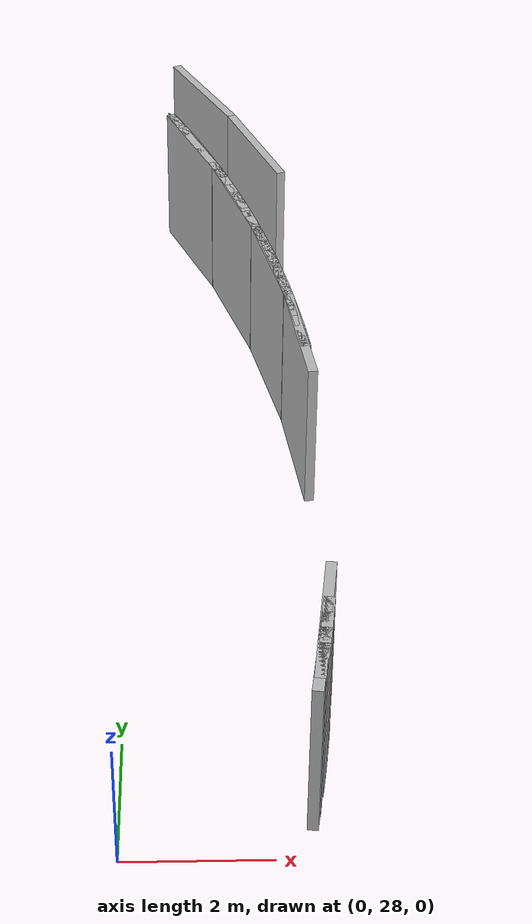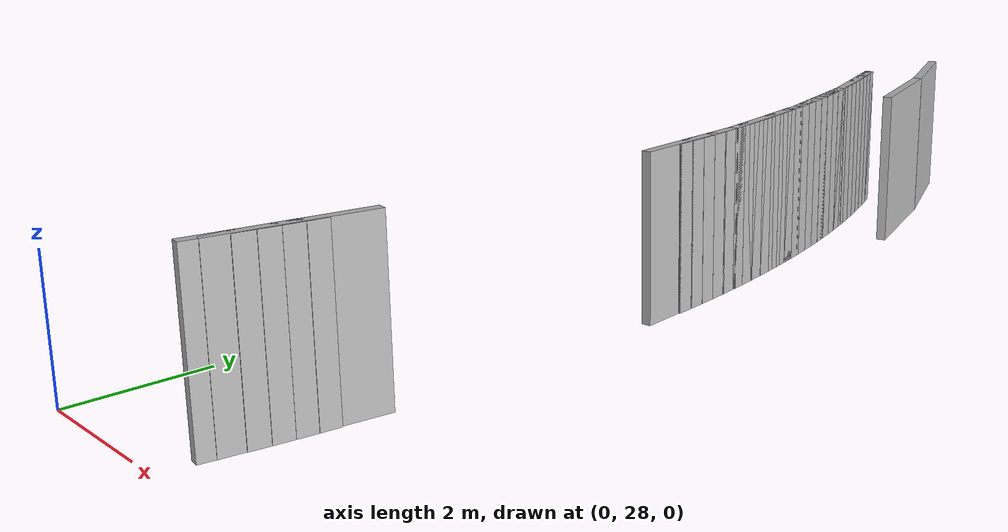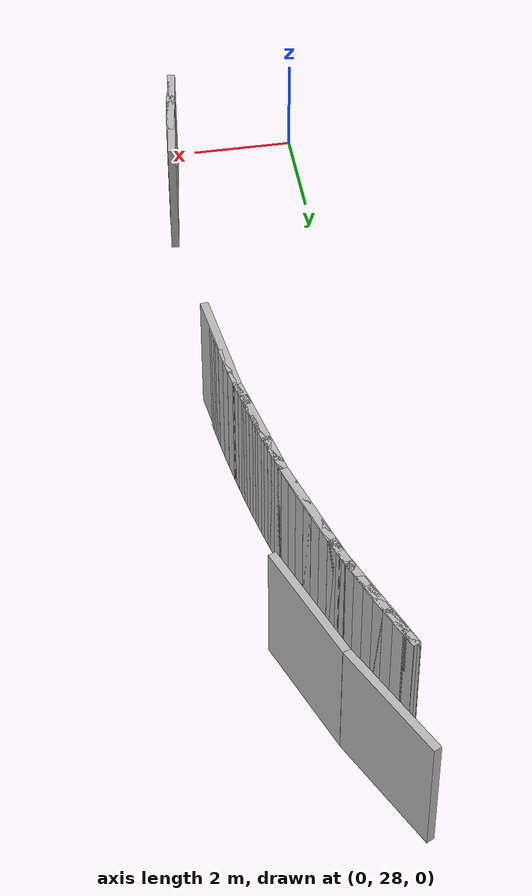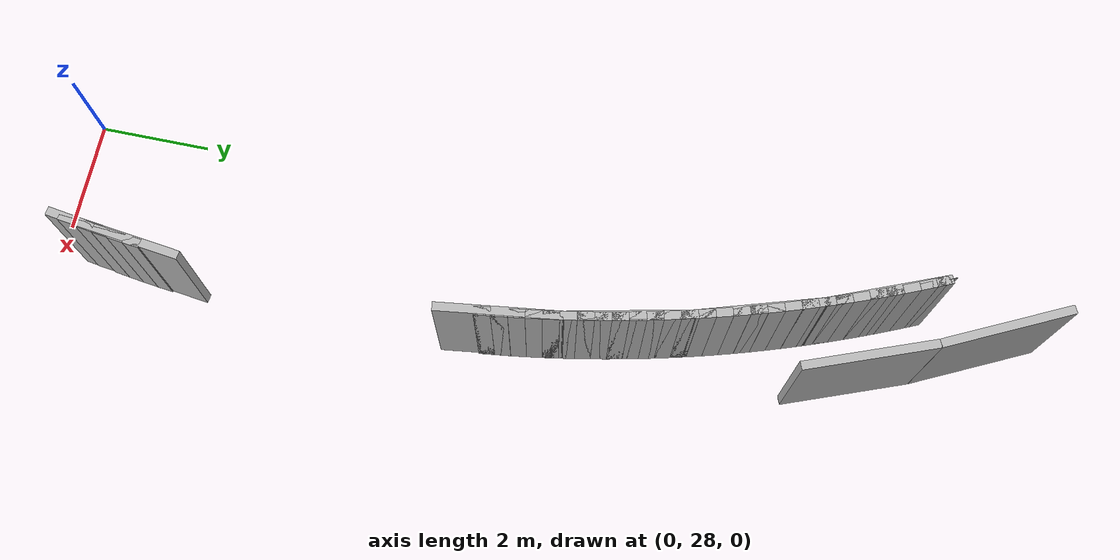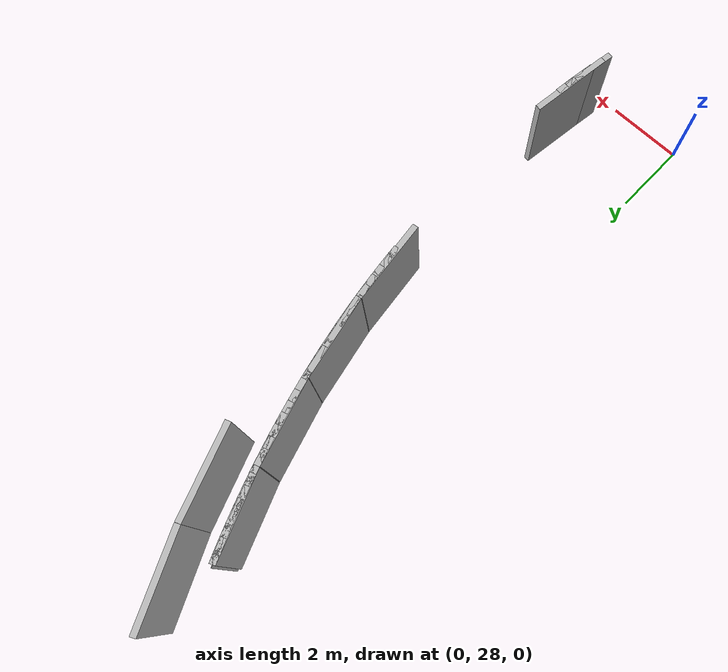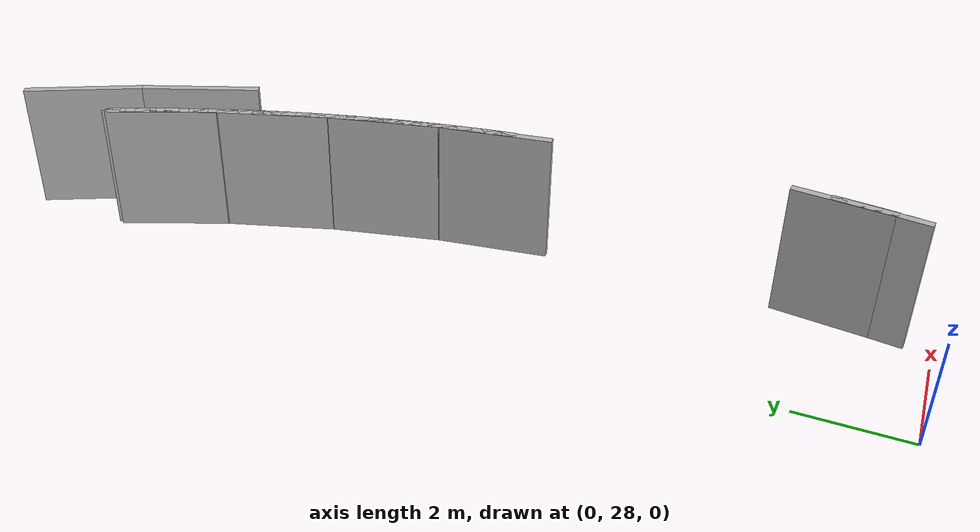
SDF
<sdf version="1.6">
 <model name="sps_2404">
  <static>1</static>
  <allow_auto_disable>0</allow_auto_disable>
  <link name="Wall7730">
   <collision name="collision"><geometry><box><size>0.282374 0.15 2.5</size></box></geometry></collision>
   <visual name="visual">
    <geometry><box><size>0.282374 0.15 2.5</size></box></geometry>
    <transparency>0.0</transparency>
   </visual>
   <pose>1.31515 41.6692 1.25 0 0 -1.21397</pose>
  </link>
  <link name="Wall7731">
   <collision name="collision"><geometry><box><size>0.282471 0.15 2.5</size></box></geometry></collision>
   <visual name="visual">
    <geometry><box><size>0.282471 0.15 2.5</size></box></geometry>
    <transparency>0.0</transparency>
   </visual>
   <pose>1.41225 41.404 1.25 0 0 -1.22561</pose>
  </link>
  <link name="Wall7732">
   <collision name="collision"><geometry><box><size>0.282222 0.15 2.5</size></box></geometry></collision>
   <visual name="visual">
    <geometry><box><size>0.282222 0.15 2.5</size></box></geometry>
    <transparency>0.0</transparency>
   </visual>
   <pose>1.50634 41.1378 1.25 0 0 -1.23653</pose>
  </link>
  <link name="Wall7733">
   <collision name="collision"><geometry><box><size>0.282297 0.15 2.5</size></box></geometry></collision>
   <visual name="visual">
    <geometry><box><size>0.282297 0.15 2.5</size></box></geometry>
    <transparency>0.0</transparency>
   </visual>
   <pose>1.59734 40.8706 1.25 0 0 -1.2485</pose>
  </link>
  <link name="Wall7734">
   <collision name="collision"><geometry><box><size>0.282407 0.15 2.5</size></box></geometry></collision>
   <visual name="visual">
    <geometry><box><size>0.282407 0.15 2.5</size></box></geometry>
    <transparency>0.0</transparency>
   </visual>
   <pose>1.68536 40.6023 1.25 0 0 -1.25909</pose>
  </link>
  <link name="Wall7735">
   <collision name="collision"><geometry><box><size>0.282423 0.15 2.5</size></box></geometry></collision>
   <visual name="visual">
    <geometry><box><size>0.282423 0.15 2.5</size></box></geometry>
    <transparency>0.0</transparency>
   </visual>
   <pose>1.77035 40.333 1.25 0 0 -1.27112</pose>
  </link>
  <link name="Wall7736">
   <collision name="collision"><geometry><box><size>0.282327 0.15 2.5</size></box></geometry></collision>
   <visual name="visual">
    <geometry><box><size>0.282327 0.15 2.5</size></box></geometry>
    <transparency>0.0</transparency>
   </visual>
   <pose>1.85235 40.0628 1.25 0 0 -1.28118</pose>
  </link>
  <link name="Wall7737">
   <collision name="collision"><geometry><box><size>0.282418 0.15 2.5</size></box></geometry></collision>
   <visual name="visual">
    <geometry><box><size>0.282418 0.15 2.5</size></box></geometry>
    <transparency>0.0</transparency>
   </visual>
   <pose>1.93136 39.7917 1.25 0 0 -1.29321</pose>
  </link>
  <link name="Wall7738">
   <collision name="collision"><geometry><box><size>0.28233 0.15 2.5</size></box></geometry></collision>
   <visual name="visual">
    <geometry><box><size>0.28233 0.15 2.5</size></box></geometry>
    <transparency>0.0</transparency>
   </visual>
   <pose>2.00716 39.5197 1.25 0 0 -1.30479</pose>
  </link>
  <link name="Wall7739">
   <collision name="collision"><geometry><box><size>0.282488 0.15 2.5</size></box></geometry></collision>
   <visual name="visual">
    <geometry><box><size>0.282488 0.15 2.5</size></box></geometry>
    <transparency>0.0</transparency>
   </visual>
   <pose>2.07986 39.2468 1.25 0 0 -1.31612</pose>
  </link>
  <link name="Wall7740">
   <collision name="collision"><geometry><box><size>0.282416 0.15 2.5</size></box></geometry></collision>
   <visual name="visual">
    <geometry><box><size>0.282416 0.15 2.5</size></box></geometry>
    <transparency>0.0</transparency>
   </visual>
   <pose>2.14956 38.9731 1.25 0 0 -1.32676</pose>
  </link>
  <link name="Wall7741">
   <collision name="collision"><geometry><box><size>0.282364 0.15 2.5</size></box></geometry></collision>
   <visual name="visual">
    <geometry><box><size>0.282364 0.15 2.5</size></box></geometry>
    <transparency>0.0</transparency>
   </visual>
   <pose>2.21618 38.6987 1.25 0 0 -1.33851</pose>
  </link>
  <link name="Wall7742">
   <collision name="collision"><geometry><box><size>0.282451 0.15 2.5</size></box></geometry></collision>
   <visual name="visual">
    <geometry><box><size>0.282451 0.15 2.5</size></box></geometry>
    <transparency>0.0</transparency>
   </visual>
   <pose>2.27965 38.4235 1.25 0 0 -1.34967</pose>
  </link>
  <link name="Wall7743">
   <collision name="collision"><geometry><box><size>0.282442 0.15 2.5</size></box></geometry></collision>
   <visual name="visual">
    <geometry><box><size>0.282442 0.15 2.5</size></box></geometry>
    <transparency>0.0</transparency>
   </visual>
   <pose>2.34005 38.1476 1.25 0 0 -1.36094</pose>
  </link>
  <link name="Wall7744">
   <collision name="collision"><geometry><box><size>0.28236 0.15 2.5</size></box></geometry></collision>
   <visual name="visual">
    <geometry><box><size>0.28236 0.15 2.5</size></box></geometry>
    <transparency>0.0</transparency>
   </visual>
   <pose>2.39736 37.8711 1.25 0 0 -1.37192</pose>
  </link>
  <link name="Wall7745">
   <collision name="collision"><geometry><box><size>0.282316 0.15 2.5</size></box></geometry></collision>
   <visual name="visual">
    <geometry><box><size>0.282316 0.15 2.5</size></box></geometry>
    <transparency>0.0</transparency>
   </visual>
   <pose>2.45147 37.594 1.25 0 0 -1.384</pose>
  </link>
  <link name="Wall7746">
   <collision name="collision"><geometry><box><size>0.282306 0.15 2.5</size></box></geometry></collision>
   <visual name="visual">
    <geometry><box><size>0.282306 0.15 2.5</size></box></geometry>
    <transparency>0.0</transparency>
   </visual>
   <pose>2.50237 37.3163 1.25 0 0 -1.39498</pose>
  </link>
  <link name="Wall7747">
   <collision name="collision"><geometry><box><size>0.28228 0.15 2.5</size></box></geometry></collision>
   <visual name="visual">
    <geometry><box><size>0.28228 0.15 2.5</size></box></geometry>
    <transparency>0.0</transparency>
   </visual>
   <pose>2.55025 37.0381 1.25 0 0 -1.40572</pose>
  </link>
  <link name="Wall7748">
   <collision name="collision"><geometry><box><size>0.282499 0.15 2.5</size></box></geometry></collision>
   <visual name="visual">
    <geometry><box><size>0.282499 0.15 2.5</size></box></geometry>
    <transparency>0.0</transparency>
   </visual>
   <pose>2.59505 36.7593 1.25 0 0 -1.41723</pose>
  </link>
  <link name="Wall7749">
   <collision name="collision"><geometry><box><size>0.282264 0.15 2.5</size></box></geometry></collision>
   <visual name="visual">
    <geometry><box><size>0.282264 0.15 2.5</size></box></geometry>
    <transparency>0.0</transparency>
   </visual>
   <pose>2.63665 36.48 1.25 0 0 -1.42869</pose>
  </link>
  <link name="Wall7750">
   <collision name="collision"><geometry><box><size>0.282619 0.15 2.5</size></box></geometry></collision>
   <visual name="visual">
    <geometry><box><size>0.282619 0.15 2.5</size></box></geometry>
    <transparency>0.0</transparency>
   </visual>
   <pose>2.67504 36.2002 1.25 0 0 -1.4402</pose>
  </link>
  <link name="Wall7751">
   <collision name="collision"><geometry><box><size>0.282163 0.15 2.5</size></box></geometry></collision>
   <visual name="visual">
    <geometry><box><size>0.282163 0.15 2.5</size></box></geometry>
    <transparency>0.0</transparency>
   </visual>
   <pose>2.71026 35.92 1.25 0 0 -1.45132</pose>
  </link>
  <link name="Wall7772">
   <collision name="collision"><geometry><box><size>0.282355 0.15 2.5</size></box></geometry></collision>
   <visual name="visual">
    <geometry><box><size>0.282355 0.15 2.5</size></box></geometry>
    <transparency>0.0</transparency>
   </visual>
   <pose>2.71523 30.0041 1.25 0 0 -1.68866</pose>
  </link>
  <link name="Wall7773">
   <collision name="collision"><geometry><box><size>0.282359 0.15 2.5</size></box></geometry></collision>
   <visual name="visual">
    <geometry><box><size>0.282359 0.15 2.5</size></box></geometry>
    <transparency>0.0</transparency>
   </visual>
   <pose>2.68053 29.7239 1.25 0 0 -1.69933</pose>
  </link>
  <link name="Wall7774">
   <collision name="collision"><geometry><box><size>0.282386 0.15 2.5</size></box></geometry></collision>
   <visual name="visual">
    <geometry><box><size>0.282386 0.15 2.5</size></box></geometry>
    <transparency>0.0</transparency>
   </visual>
   <pose>2.64266 29.4441 1.25 0 0 -1.71132</pose>
  </link>
  <link name="Wall7908">
   <collision name="collision"><geometry><box><size>0.0107645 0.15 2.5</size></box></geometry></collision>
   <visual name="visual">
    <geometry><box><size>0.0107645 0.15 2.5</size></box></geometry>
    <transparency>0.0</transparency>
   </visual>
   <pose>0.607353 43.3619 1.25 0 -0 0.420527</pose>
  </link>
  <link name="Wall7909">
   <collision name="collision"><geometry><box><size>0.282237 0.15 2.5</size></box></geometry></collision>
   <visual name="visual">
    <geometry><box><size>0.282237 0.15 2.5</size></box></geometry>
    <transparency>0.0</transparency>
   </visual>
   <pose>0.670371 43.2355 1.25 0 0 -1.14642</pose>
  </link>
  <link name="Wall7910">
   <collision name="collision"><geometry><box><size>0.282378 0.15 2.5</size></box></geometry></collision>
   <visual name="visual">
    <geometry><box><size>0.282378 0.15 2.5</size></box></geometry>
    <transparency>0.0</transparency>
   </visual>
   <pose>0.785178 42.9776 1.25 0 0 -1.15753</pose>
  </link>
  <link name="Wall7911">
   <collision name="collision"><geometry><box><size>0.282458 0.15 2.5</size></box></geometry></collision>
   <visual name="visual">
    <geometry><box><size>0.282458 0.15 2.5</size></box></geometry>
    <transparency>0.0</transparency>
   </visual>
   <pose>0.897056 42.7183 1.25 0 0 -1.16942</pose>
  </link>
  <link name="Wall7912">
   <collision name="collision"><geometry><box><size>0.282229 0.15 2.5</size></box></geometry></collision>
   <visual name="visual">
    <geometry><box><size>0.282229 0.15 2.5</size></box></geometry>
    <transparency>0.0</transparency>
   </visual>
   <pose>1.00594 42.4578 1.25 0 0 -1.18033</pose>
  </link>
  <link name="Wall7913">
   <collision name="collision"><geometry><box><size>0.282476 0.15 2.5</size></box></geometry></collision>
   <visual name="visual">
    <geometry><box><size>0.282476 0.15 2.5</size></box></geometry>
    <transparency>0.0</transparency>
   </visual>
   <pose>1.11196 42.1961 1.25 0 0 -1.19141</pose>
  </link>
  <link name="Wall9497">
   <collision name="collision"><geometry><box><size>1.69407 0.15 2.5</size></box></geometry></collision>
   <visual name="visual">
    <geometry><box><size>1.69407 0.15 2.5</size></box></geometry>
    <transparency>0.0</transparency>
   </visual>
   <pose>2.60854 29.3063 1.25 0 -0 1.42472</pose>
  </link>
  <link name="Wall16895">
   <collision name="collision"><geometry><box><size>2.31532 0.15 2.5</size></box></geometry></collision>
   <visual name="visual">
    <geometry><box><size>2.31532 0.15 2.5</size></box></geometry>
    <transparency>0.0</transparency>
   </visual>
   <pose>2.14916 42.2192 1.25 0 -0 1.93603</pose>
  </link>
  <link name="Wall16896">
   <collision name="collision"><geometry><box><size>2.31532 0.15 2.5</size></box></geometry></collision>
   <visual name="visual">
    <geometry><box><size>2.31532 0.15 2.5</size></box></geometry>
    <transparency>0.0</transparency>
   </visual>
   <pose>1.22756 44.3407 1.25 0 -0 2.02519</pose>
  </link>
  <link name="Wall32361">
   <collision name="collision"><geometry><box><size>0.282407 0.15 2.5</size></box></geometry></collision>
   <visual name="visual">
    <geometry><box><size>0.282407 0.15 2.5</size></box></geometry>
    <transparency>0.0</transparency>
   </visual>
   <pose>2.60158 29.1647 1.25 0 -0 1.41936</pose>
  </link>
  <link name="Wall32362">
   <collision name="collision"><geometry><box><size>0.28236 0.15 2.5</size></box></geometry></collision>
   <visual name="visual">
    <geometry><box><size>0.28236 0.15 2.5</size></box></geometry>
    <transparency>0.0</transparency>
   </visual>
   <pose>2.64257 29.4441 1.25 0 -0 1.43092</pose>
  </link>
  <link name="Wall32363">
   <collision name="collision"><geometry><box><size>0.282382 0.15 2.5</size></box></geometry></collision>
   <visual name="visual">
    <geometry><box><size>0.282382 0.15 2.5</size></box></geometry>
    <transparency>0.0</transparency>
   </visual>
   <pose>2.68044 29.7239 1.25 0 -0 1.44162</pose>
  </link>
  <link name="Wall32385">
   <collision name="collision"><geometry><box><size>0.282163 0.15 2.5</size></box></geometry></collision>
   <visual name="visual">
    <geometry><box><size>0.282163 0.15 2.5</size></box></geometry>
    <transparency>0.0</transparency>
   </visual>
   <pose>2.71026 35.92 1.25 0 -0 1.69027</pose>
  </link>
  <link name="Wall32386">
   <collision name="collision"><geometry><box><size>0.282619 0.15 2.5</size></box></geometry></collision>
   <visual name="visual">
    <geometry><box><size>0.282619 0.15 2.5</size></box></geometry>
    <transparency>0.0</transparency>
   </visual>
   <pose>2.67504 36.2002 1.25 0 -0 1.70139</pose>
  </link>
  <link name="Wall32387">
   <collision name="collision"><geometry><box><size>0.28229 0.15 2.5</size></box></geometry></collision>
   <visual name="visual">
    <geometry><box><size>0.28229 0.15 2.5</size></box></geometry>
    <transparency>0.0</transparency>
   </visual>
   <pose>2.63656 36.48 1.25 0 -0 1.71355</pose>
  </link>
  <link name="Wall32388">
   <collision name="collision"><geometry><box><size>0.282471 0.15 2.5</size></box></geometry></collision>
   <visual name="visual">
    <geometry><box><size>0.282471 0.15 2.5</size></box></geometry>
    <transparency>0.0</transparency>
   </visual>
   <pose>2.59496 36.7593 1.25 0 -0 1.72372</pose>
  </link>
  <link name="Wall32389">
   <collision name="collision"><geometry><box><size>0.28228 0.15 2.5</size></box></geometry></collision>
   <visual name="visual">
    <geometry><box><size>0.28228 0.15 2.5</size></box></geometry>
    <transparency>0.0</transparency>
   </visual>
   <pose>2.55025 37.0381 1.25 0 -0 1.73587</pose>
  </link>
  <link name="Wall32390">
   <collision name="collision"><geometry><box><size>0.282306 0.15 2.5</size></box></geometry></collision>
   <visual name="visual">
    <geometry><box><size>0.282306 0.15 2.5</size></box></geometry>
    <transparency>0.0</transparency>
   </visual>
   <pose>2.50237 37.3163 1.25 0 -0 1.74661</pose>
  </link>
  <link name="Wall32391">
   <collision name="collision"><geometry><box><size>0.282316 0.15 2.5</size></box></geometry></collision>
   <visual name="visual">
    <geometry><box><size>0.282316 0.15 2.5</size></box></geometry>
    <transparency>0.0</transparency>
   </visual>
   <pose>2.45147 37.594 1.25 0 -0 1.75759</pose>
  </link>
  <link name="Wall32392">
   <collision name="collision"><geometry><box><size>0.28236 0.15 2.5</size></box></geometry></collision>
   <visual name="visual">
    <geometry><box><size>0.28236 0.15 2.5</size></box></geometry>
    <transparency>0.0</transparency>
   </visual>
   <pose>2.39736 37.8711 1.25 0 -0 1.76968</pose>
  </link>
  <link name="Wall32393">
   <collision name="collision"><geometry><box><size>0.282442 0.15 2.5</size></box></geometry></collision>
   <visual name="visual">
    <geometry><box><size>0.282442 0.15 2.5</size></box></geometry>
    <transparency>0.0</transparency>
   </visual>
   <pose>2.34005 38.1476 1.25 0 -0 1.78065</pose>
  </link>
  <link name="Wall32394">
   <collision name="collision"><geometry><box><size>0.282451 0.15 2.5</size></box></geometry></collision>
   <visual name="visual">
    <geometry><box><size>0.282451 0.15 2.5</size></box></geometry>
    <transparency>0.0</transparency>
   </visual>
   <pose>2.27965 38.4235 1.25 0 -0 1.79193</pose>
  </link>
  <link name="Wall32395">
   <collision name="collision"><geometry><box><size>0.282364 0.15 2.5</size></box></geometry></collision>
   <visual name="visual">
    <geometry><box><size>0.282364 0.15 2.5</size></box></geometry>
    <transparency>0.0</transparency>
   </visual>
   <pose>2.21618 38.6987 1.25 0 -0 1.80309</pose>
  </link>
  <link name="Wall32396">
   <collision name="collision"><geometry><box><size>0.282416 0.15 2.5</size></box></geometry></collision>
   <visual name="visual">
    <geometry><box><size>0.282416 0.15 2.5</size></box></geometry>
    <transparency>0.0</transparency>
   </visual>
   <pose>2.14956 38.9731 1.25 0 -0 1.81483</pose>
  </link>
  <link name="Wall32397">
   <collision name="collision"><geometry><box><size>0.282488 0.15 2.5</size></box></geometry></collision>
   <visual name="visual">
    <geometry><box><size>0.282488 0.15 2.5</size></box></geometry>
    <transparency>0.0</transparency>
   </visual>
   <pose>2.07986 39.2468 1.25 0 -0 1.82547</pose>
  </link>
  <link name="Wall32398">
   <collision name="collision"><geometry><box><size>0.282378 0.15 2.5</size></box></geometry></collision>
   <visual name="visual">
    <geometry><box><size>0.282378 0.15 2.5</size></box></geometry>
    <transparency>0.0</transparency>
   </visual>
   <pose>2.00707 39.5197 1.25 0 -0 1.83743</pose>
  </link>
  <link name="Wall32399">
   <collision name="collision"><geometry><box><size>0.282418 0.15 2.5</size></box></geometry></collision>
   <visual name="visual">
    <geometry><box><size>0.282418 0.15 2.5</size></box></geometry>
    <transparency>0.0</transparency>
   </visual>
   <pose>1.93117 39.7917 1.25 0 -0 1.84838</pose>
  </link>
  <link name="Wall32400">
   <collision name="collision"><geometry><box><size>0.282274 0.15 2.5</size></box></geometry></collision>
   <visual name="visual">
    <geometry><box><size>0.282274 0.15 2.5</size></box></geometry>
    <transparency>0.0</transparency>
   </visual>
   <pose>1.85226 40.0628 1.25 0 -0 1.85979</pose>
  </link>
  <link name="Wall32401">
   <collision name="collision"><geometry><box><size>0.282423 0.15 2.5</size></box></geometry></collision>
   <visual name="visual">
    <geometry><box><size>0.282423 0.15 2.5</size></box></geometry>
    <transparency>0.0</transparency>
   </visual>
   <pose>1.77035 40.333 1.25 0 -0 1.87047</pose>
  </link>
  <link name="Wall32402">
   <collision name="collision"><geometry><box><size>0.282351 0.15 2.5</size></box></geometry></collision>
   <visual name="visual">
    <geometry><box><size>0.282351 0.15 2.5</size></box></geometry>
    <transparency>0.0</transparency>
   </visual>
   <pose>1.68545 40.6023 1.25 0 -0 1.88188</pose>
  </link>
  <link name="Wall32403">
   <collision name="collision"><geometry><box><size>0.282355 0.15 2.5</size></box></geometry></collision>
   <visual name="visual">
    <geometry><box><size>0.282355 0.15 2.5</size></box></geometry>
    <transparency>0.0</transparency>
   </visual>
   <pose>1.59743 40.8706 1.25 0 -0 1.89371</pose>
  </link>
  <link name="Wall32404">
   <collision name="collision"><geometry><box><size>0.282222 0.15 2.5</size></box></geometry></collision>
   <visual name="visual">
    <geometry><box><size>0.282222 0.15 2.5</size></box></geometry>
    <transparency>0.0</transparency>
   </visual>
   <pose>1.50634 41.1378 1.25 0 -0 1.90506</pose>
  </link>
  <link name="Wall32405">
   <collision name="collision"><geometry><box><size>0.282471 0.15 2.5</size></box></geometry></collision>
   <visual name="visual">
    <geometry><box><size>0.282471 0.15 2.5</size></box></geometry>
    <transparency>0.0</transparency>
   </visual>
   <pose>1.41225 41.404 1.25 0 -0 1.91599</pose>
  </link>
  <link name="Wall32406">
   <collision name="collision"><geometry><box><size>0.282374 0.15 2.5</size></box></geometry></collision>
   <visual name="visual">
    <geometry><box><size>0.282374 0.15 2.5</size></box></geometry>
    <transparency>0.0</transparency>
   </visual>
   <pose>1.31515 41.6692 1.25 0 -0 1.92762</pose>
  </link>
  <link name="Wall32407">
   <collision name="collision"><geometry><box><size>0.282328 0.15 2.5</size></box></geometry></collision>
   <visual name="visual">
    <geometry><box><size>0.282328 0.15 2.5</size></box></geometry>
    <transparency>0.0</transparency>
   </visual>
   <pose>1.21505 41.9332 1.25 0 -0 1.93878</pose>
  </link>
  <link name="Wall32408">
   <collision name="collision"><geometry><box><size>0.282476 0.15 2.5</size></box></geometry></collision>
   <visual name="visual">
    <geometry><box><size>0.282476 0.15 2.5</size></box></geometry>
    <transparency>0.0</transparency>
   </visual>
   <pose>1.11196 42.1961 1.25 0 -0 1.95018</pose>
  </link>
  <link name="Wall32409">
   <collision name="collision"><geometry><box><size>0.282229 0.15 2.5</size></box></geometry></collision>
   <visual name="visual">
    <geometry><box><size>0.282229 0.15 2.5</size></box></geometry>
    <transparency>0.0</transparency>
   </visual>
   <pose>1.00594 42.4578 1.25 0 -0 1.96126</pose>
  </link>
  <link name="Wall32410">
   <collision name="collision"><geometry><box><size>0.282554 0.15 2.5</size></box></geometry></collision>
   <visual name="visual">
    <geometry><box><size>0.282554 0.15 2.5</size></box></geometry>
    <transparency>0.0</transparency>
   </visual>
   <pose>0.896934 42.7183 1.25 0 -0 1.97297</pose>
  </link>
  <link name="Wall32411">
   <collision name="collision"><geometry><box><size>0.28228 0.15 2.5</size></box></geometry></collision>
   <visual name="visual">
    <geometry><box><size>0.28228 0.15 2.5</size></box></geometry>
    <transparency>0.0</transparency>
   </visual>
   <pose>0.785056 42.9776 1.25 0 -0 1.98327</pose>
  </link>
  <link name="Wall32412">
   <collision name="collision"><geometry><box><size>0.282237 0.15 2.5</size></box></geometry></collision>
   <visual name="visual">
    <geometry><box><size>0.282237 0.15 2.5</size></box></geometry>
    <transparency>0.0</transparency>
   </visual>
   <pose>0.670371 43.2355 1.25 0 -0 1.99517</pose>
  </link>
  <link name="Wall36665">
   <collision name="collision"><geometry><box><size>2.14551 0.15 2.5</size></box></geometry></collision>
   <visual name="visual">
    <geometry><box><size>2.14551 0.15 2.5</size></box></geometry>
    <transparency>0.0</transparency>
   </visual>
   <pose>2.66167 29.7547 1.25 0 -0 1.44292</pose>
  </link>
  <link name="Wall36668">
   <collision name="collision"><geometry><box><size>2.14537 0.15 2.5</size></box></geometry></collision>
   <visual name="visual">
    <geometry><box><size>2.14537 0.15 2.5</size></box></geometry>
    <transparency>0.0</transparency>
   </visual>
   <pose>2.65627 36.1692 1.25 0 -0 1.70038</pose>
  </link>
  <link name="Wall36669">
   <collision name="collision"><geometry><box><size>2.14546 0.15 2.5</size></box></geometry></collision>
   <visual name="visual">
    <geometry><box><size>2.14546 0.15 2.5</size></box></geometry>
    <transparency>0.0</transparency>
   </visual>
   <pose>2.28826 38.2808 1.25 0 -0 1.78631</pose>
  </link>
  <link name="Wall36670">
   <collision name="collision"><geometry><box><size>2.14545 0.15 2.5</size></box></geometry></collision>
   <visual name="visual">
    <geometry><box><size>2.14545 0.15 2.5</size></box></geometry>
    <transparency>0.0</transparency>
   </visual>
   <pose>1.74056 40.3531 1.25 0 -0 1.87205</pose>
  </link>
  <link name="Wall36671">
   <collision name="collision"><geometry><box><size>2.14536 0.15 2.5</size></box></geometry></collision>
   <visual name="visual">
    <geometry><box><size>2.14536 0.15 2.5</size></box></geometry>
    <transparency>0.0</transparency>
   </visual>
   <pose>1.01726 42.3708 1.25 0 -0 1.95795</pose>
  </link>
 </model>
</sdf>
